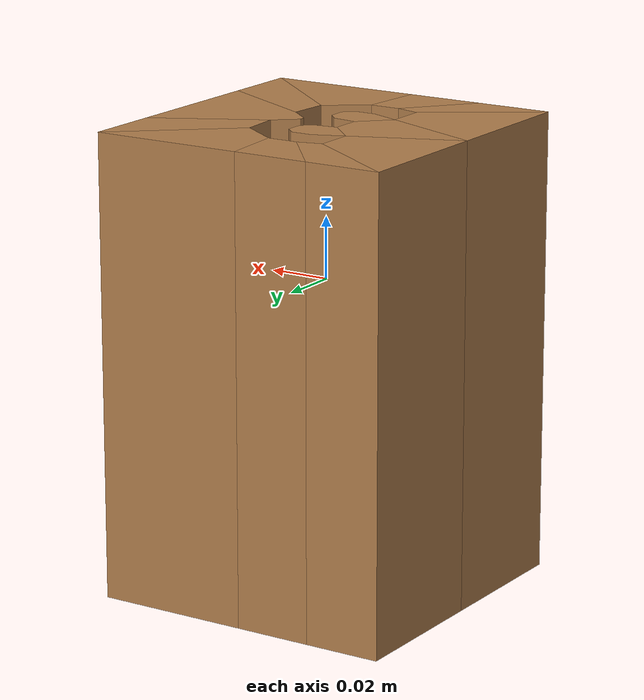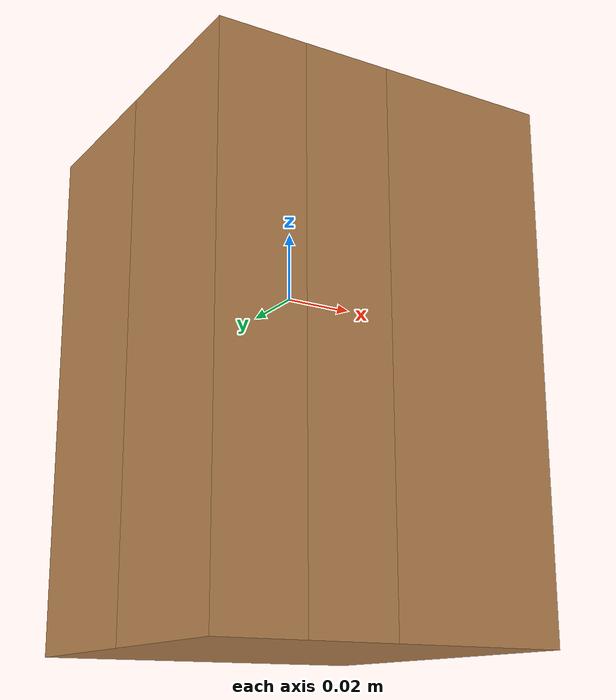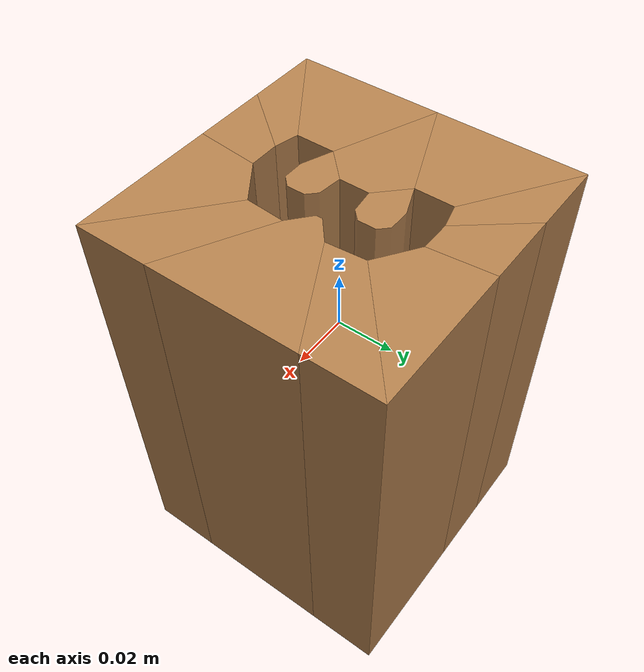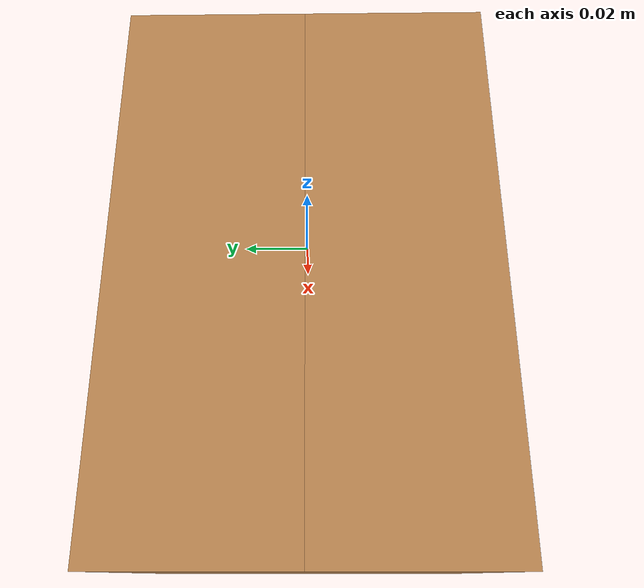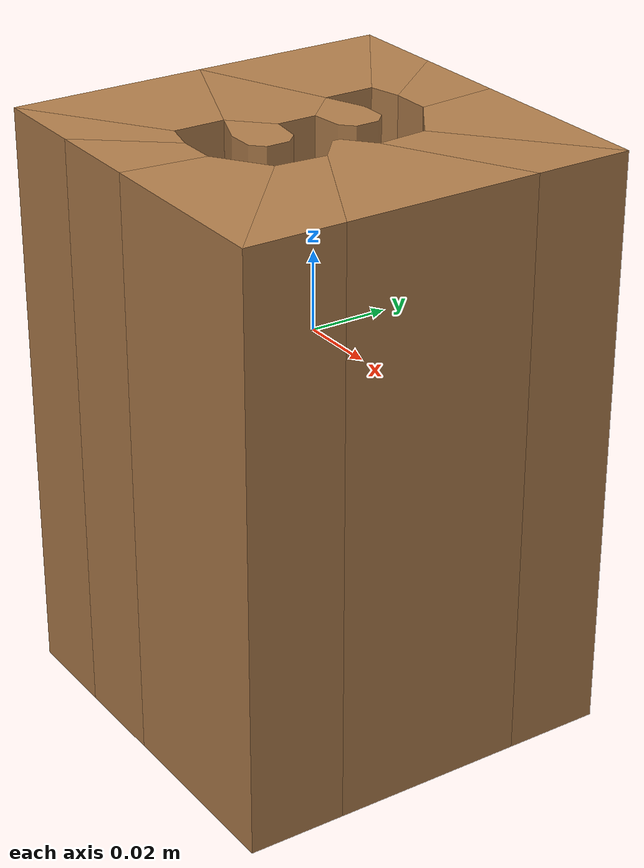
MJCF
<?xml version="1.0" ?>
<mujoco model="hole_large3">
    <asset>
        <mesh file="hole_large/0.stl" name="mesh_0"/>
        <mesh file="hole_large/1.stl" name="mesh_1"/>
        <mesh file="hole_large/2.stl" name="mesh_2"/>
        <mesh file="hole_large/3.stl" name="mesh_3"/>
        <mesh file="hole_large/4.stl" name="mesh_4"/>
        <mesh file="hole_large/5.stl" name="mesh_5"/>
        <mesh file="hole_large/6.stl" name="mesh_6"/>
        <mesh file="hole_large/7.stl" name="mesh_7"/>
        <mesh file="hole_large/8.stl" name="mesh_8"/>
        <mesh file="hole_large/9.stl" name="mesh_9"/>
        <mesh file="hole_large/10.stl" name="mesh_10"/>
        <mesh file="hole_large/11.stl" name="mesh_11"/>
        <mesh file="hole_large/12.stl" name="mesh_12"/>
        <mesh file="hole_large/13.stl" name="mesh_13"/>
        <mesh file="hole_large/14.stl" name="mesh_14"/>
        <texture file="../texture/red-wood.png" name="red-wood"/>
        <material name="redwood_mat" texture="red-wood" texrepeat="3 3" specular="0.4" shininess="0.1"/>
    </asset>
    <worldbody>
        <body>
            <body name="object">
                <geom mesh="mesh_0" type="mesh" group="0" material="redwood_mat"/>
                <geom mesh="mesh_1" type="mesh" group="0" material="redwood_mat"/>
                <geom mesh="mesh_2" type="mesh" group="0" material="redwood_mat"/>
                <geom mesh="mesh_3" type="mesh" group="0" material="redwood_mat"/>
                <geom mesh="mesh_4" type="mesh" group="0" material="redwood_mat"/>
                <geom mesh="mesh_5" type="mesh" group="0" material="redwood_mat"/>
                <geom mesh="mesh_6" type="mesh" group="0" material="redwood_mat"/>
                <geom mesh="mesh_7" type="mesh" group="0" material="redwood_mat"/>
                <geom mesh="mesh_8" type="mesh" group="0" material="redwood_mat"/>
                <geom mesh="mesh_9" type="mesh" group="0" material="redwood_mat"/>
                <geom mesh="mesh_10" type="mesh" group="0" material="redwood_mat"/>
                <geom mesh="mesh_11" type="mesh" group="0" material="redwood_mat"/>
                <geom mesh="mesh_12" type="mesh" group="0" material="redwood_mat"/>
                <geom mesh="mesh_13" type="mesh" group="0" material="redwood_mat"/>
                <geom mesh="mesh_14" type="mesh" group="0" material="redwood_mat"/>
            </body>
        </body>
    </worldbody>
</mujoco>
